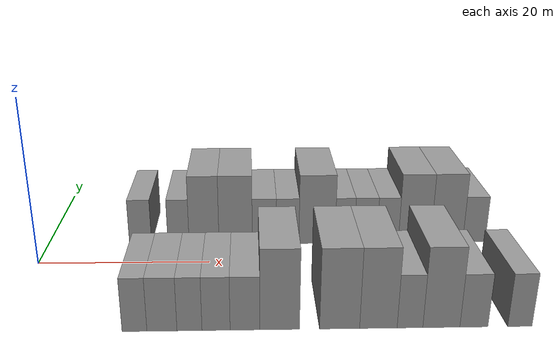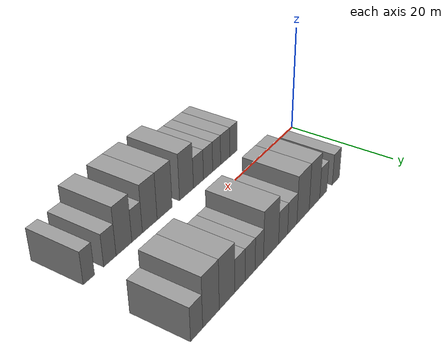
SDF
<sdf version="1.6">
 <world name="default">
  <model name="building_1">
   <static>1</static>
   <pose>11.3476 9.5000 0 0.000000 0.000000 1.570796</pose>
   <link name="link">
    <pose>0 0 3.00 0 0 0</pose>
    <collision name="collision"><geometry><box><size>10.0000 2.6953 6.0000</size></box></geometry></collision>
    <visual name="visual">
     <cast_shadows>0</cast_shadows>
     <geometry><box><size>10.0000 2.6953 6.0000</size></box></geometry>
     <material>
      <script>
       <uri>model://grey_wall/materials/scripts</uri>
       <uri>model://grey_wall/materials/textures</uri>
       <name>vrc/grey_wall</name>
      </script>
     </material>
    </visual>
   </link>
  </model>
  <model name="building_2">
   <static>1</static>
   <pose>15.9924 9.5000 0 0.000000 0.000000 1.570796</pose>
   <link name="link">
    <pose>0 0 3.00 0 0 0</pose>
    <collision name="collision"><geometry><box><size>10.0000 2.5941 6.0000</size></box></geometry></collision>
    <visual name="visual">
     <cast_shadows>0</cast_shadows>
     <geometry><box><size>10.0000 2.5941 6.0000</size></box></geometry>
     <material>
      <script>
       <uri>model://grey_wall/materials/scripts</uri>
       <uri>model://grey_wall/materials/textures</uri>
       <name>vrc/grey_wall</name>
      </script>
     </material>
    </visual>
   </link>
  </model>
  <model name="building_3">
   <static>1</static>
   <pose>19.1227 9.5000 0 0.000000 0.000000 1.570796</pose>
   <link name="link">
    <pose>0 0 4.50 0 0 0</pose>
    <collision name="collision"><geometry><box><size>10.0000 3.6666 9.0000</size></box></geometry></collision>
    <visual name="visual">
     <cast_shadows>0</cast_shadows>
     <geometry><box><size>10.0000 3.6666 9.0000</size></box></geometry>
     <material>
      <script>
       <uri>model://grey_wall/materials/scripts</uri>
       <uri>model://grey_wall/materials/textures</uri>
       <name>vrc/grey_wall</name>
      </script>
     </material>
    </visual>
   </link>
  </model>
  <model name="building_4">
   <static>1</static>
   <pose>23.0033 9.5000 0 0.000000 0.000000 1.570796</pose>
   <link name="link">
    <pose>0 0 4.50 0 0 0</pose>
    <collision name="collision"><geometry><box><size>10.0000 4.0947 9.0000</size></box></geometry></collision>
    <visual name="visual">
     <cast_shadows>0</cast_shadows>
     <geometry><box><size>10.0000 4.0947 9.0000</size></box></geometry>
     <material>
      <script>
       <uri>model://grey_wall/materials/scripts</uri>
       <uri>model://grey_wall/materials/textures</uri>
       <name>vrc/grey_wall</name>
      </script>
     </material>
    </visual>
   </link>
  </model>
  <model name="building_5">
   <static>1</static>
   <pose>26.5268 9.5000 0 0.000000 0.000000 1.570796</pose>
   <link name="link">
    <pose>0 0 3.00 0 0 0</pose>
    <collision name="collision"><geometry><box><size>10.0000 2.9523 6.0000</size></box></geometry></collision>
    <visual name="visual">
     <cast_shadows>0</cast_shadows>
     <geometry><box><size>10.0000 2.9523 6.0000</size></box></geometry>
     <material>
      <script>
       <uri>model://grey_wall/materials/scripts</uri>
       <uri>model://grey_wall/materials/textures</uri>
       <name>vrc/grey_wall</name>
      </script>
     </material>
    </visual>
   </link>
  </model>
  <model name="building_6">
   <static>1</static>
   <pose>29.4002 9.5000 0 0.000000 0.000000 1.570796</pose>
   <link name="link">
    <pose>0 0 3.00 0 0 0</pose>
    <collision name="collision"><geometry><box><size>10.0000 2.7946 6.0000</size></box></geometry></collision>
    <visual name="visual">
     <cast_shadows>0</cast_shadows>
     <geometry><box><size>10.0000 2.7946 6.0000</size></box></geometry>
     <material>
      <script>
       <uri>model://grey_wall/materials/scripts</uri>
       <uri>model://grey_wall/materials/textures</uri>
       <name>vrc/grey_wall</name>
      </script>
     </material>
    </visual>
   </link>
  </model>
  <model name="building_7">
   <static>1</static>
   <pose>33.0232 9.5000 0 0.000000 0.000000 1.570796</pose>
   <link name="link">
    <pose>0 0 4.50 0 0 0</pose>
    <collision name="collision"><geometry><box><size>10.0000 4.4512 9.0000</size></box></geometry></collision>
    <visual name="visual">
     <cast_shadows>0</cast_shadows>
     <geometry><box><size>10.0000 4.4512 9.0000</size></box></geometry>
     <material>
      <script>
       <uri>model://grey_wall/materials/scripts</uri>
       <uri>model://grey_wall/materials/textures</uri>
       <name>vrc/grey_wall</name>
      </script>
     </material>
    </visual>
   </link>
  </model>
  <model name="building_8">
   <static>1</static>
   <pose>36.4513 9.5000 0 0.000000 0.000000 1.570796</pose>
   <link name="link">
    <pose>0 0 3.00 0 0 0</pose>
    <collision name="collision"><geometry><box><size>10.0000 2.4051 6.0000</size></box></geometry></collision>
    <visual name="visual">
     <cast_shadows>0</cast_shadows>
     <geometry><box><size>10.0000 2.4051 6.0000</size></box></geometry>
     <material>
      <script>
       <uri>model://grey_wall/materials/scripts</uri>
       <uri>model://grey_wall/materials/textures</uri>
       <name>vrc/grey_wall</name>
      </script>
     </material>
    </visual>
   </link>
  </model>
  <model name="building_9">
   <static>1</static>
   <pose>39.0521 9.5000 0 0.000000 0.000000 1.570796</pose>
   <link name="link">
    <pose>0 0 3.00 0 0 0</pose>
    <collision name="collision"><geometry><box><size>10.0000 2.7965 6.0000</size></box></geometry></collision>
    <visual name="visual">
     <cast_shadows>0</cast_shadows>
     <geometry><box><size>10.0000 2.7965 6.0000</size></box></geometry>
     <material>
      <script>
       <uri>model://grey_wall/materials/scripts</uri>
       <uri>model://grey_wall/materials/textures</uri>
       <name>vrc/grey_wall</name>
      </script>
     </material>
    </visual>
   </link>
  </model>
  <model name="building_10">
   <static>1</static>
   <pose>41.7821 9.5000 0 0.000000 0.000000 1.570796</pose>
   <link name="link">
    <pose>0 0 3.00 0 0 0</pose>
    <collision name="collision"><geometry><box><size>10.0000 2.6635 6.0000</size></box></geometry></collision>
    <visual name="visual">
     <cast_shadows>0</cast_shadows>
     <geometry><box><size>10.0000 2.6635 6.0000</size></box></geometry>
     <material>
      <script>
       <uri>model://grey_wall/materials/scripts</uri>
       <uri>model://grey_wall/materials/textures</uri>
       <name>vrc/grey_wall</name>
      </script>
     </material>
    </visual>
   </link>
  </model>
  <model name="building_11">
   <static>1</static>
   <pose>45.1213 9.5000 0 0.000000 0.000000 1.570796</pose>
   <link name="link">
    <pose>0 0 4.50 0 0 0</pose>
    <collision name="collision"><geometry><box><size>10.0000 4.0150 9.0000</size></box></geometry></collision>
    <visual name="visual">
     <cast_shadows>0</cast_shadows>
     <geometry><box><size>10.0000 4.0150 9.0000</size></box></geometry>
     <material>
      <script>
       <uri>model://grey_wall/materials/scripts</uri>
       <uri>model://grey_wall/materials/textures</uri>
       <name>vrc/grey_wall</name>
      </script>
     </material>
    </visual>
   </link>
  </model>
  <model name="building_12">
   <static>1</static>
   <pose>49.1280 9.5000 0 0.000000 0.000000 1.570796</pose>
   <link name="link">
    <pose>0 0 4.50 0 0 0</pose>
    <collision name="collision"><geometry><box><size>10.0000 3.9984 9.0000</size></box></geometry></collision>
    <visual name="visual">
     <cast_shadows>0</cast_shadows>
     <geometry><box><size>10.0000 3.9984 9.0000</size></box></geometry>
     <material>
      <script>
       <uri>model://grey_wall/materials/scripts</uri>
       <uri>model://grey_wall/materials/textures</uri>
       <name>vrc/grey_wall</name>
      </script>
     </material>
    </visual>
   </link>
  </model>
  <model name="building_13">
   <static>1</static>
   <pose>52.5361 9.5000 0 0.000000 0.000000 1.570796</pose>
   <link name="link">
    <pose>0 0 3.00 0 0 0</pose>
    <collision name="collision"><geometry><box><size>10.0000 2.8178 6.0000</size></box></geometry></collision>
    <visual name="visual">
     <cast_shadows>0</cast_shadows>
     <geometry><box><size>10.0000 2.8178 6.0000</size></box></geometry>
     <material>
      <script>
       <uri>model://grey_wall/materials/scripts</uri>
       <uri>model://grey_wall/materials/textures</uri>
       <name>vrc/grey_wall</name>
      </script>
     </material>
    </visual>
   </link>
  </model>
  <model name="building_54">
   <static>1</static>
   <pose>13.2302 -9.5000 0 0.000000 0.000000 1.570796</pose>
   <link name="link">
    <pose>0 0 3.00 0 0 0</pose>
    <collision name="collision"><geometry><box><size>10.0000 2.4605 6.0000</size></box></geometry></collision>
    <visual name="visual">
     <cast_shadows>0</cast_shadows>
     <geometry><box><size>10.0000 2.4605 6.0000</size></box></geometry>
     <material>
      <script>
       <uri>model://grey_wall/materials/scripts</uri>
       <uri>model://grey_wall/materials/textures</uri>
       <name>vrc/grey_wall</name>
      </script>
     </material>
    </visual>
   </link>
  </model>
  <model name="building_55">
   <static>1</static>
   <pose>15.9497 -9.5000 0 0.000000 0.000000 1.570796</pose>
   <link name="link">
    <pose>0 0 3.00 0 0 0</pose>
    <collision name="collision"><geometry><box><size>10.0000 2.9785 6.0000</size></box></geometry></collision>
    <visual name="visual">
     <cast_shadows>0</cast_shadows>
     <geometry><box><size>10.0000 2.9785 6.0000</size></box></geometry>
     <material>
      <script>
       <uri>model://grey_wall/materials/scripts</uri>
       <uri>model://grey_wall/materials/textures</uri>
       <name>vrc/grey_wall</name>
      </script>
     </material>
    </visual>
   </link>
  </model>
  <model name="building_56">
   <static>1</static>
   <pose>18.6814 -9.5000 0 0.000000 0.000000 1.570796</pose>
   <link name="link">
    <pose>0 0 3.00 0 0 0</pose>
    <collision name="collision"><geometry><box><size>10.0000 2.4847 6.0000</size></box></geometry></collision>
    <visual name="visual">
     <cast_shadows>0</cast_shadows>
     <geometry><box><size>10.0000 2.4847 6.0000</size></box></geometry>
     <material>
      <script>
       <uri>model://grey_wall/materials/scripts</uri>
       <uri>model://grey_wall/materials/textures</uri>
       <name>vrc/grey_wall</name>
      </script>
     </material>
    </visual>
   </link>
  </model>
  <model name="building_57">
   <static>1</static>
   <pose>21.3229 -9.5000 0 0.000000 0.000000 1.570796</pose>
   <link name="link">
    <pose>0 0 3.00 0 0 0</pose>
    <collision name="collision"><geometry><box><size>10.0000 2.7983 6.0000</size></box></geometry></collision>
    <visual name="visual">
     <cast_shadows>0</cast_shadows>
     <geometry><box><size>10.0000 2.7983 6.0000</size></box></geometry>
     <material>
      <script>
       <uri>model://grey_wall/materials/scripts</uri>
       <uri>model://grey_wall/materials/textures</uri>
       <name>vrc/grey_wall</name>
      </script>
     </material>
    </visual>
   </link>
  </model>
  <model name="building_58">
   <static>1</static>
   <pose>24.2023 -9.5000 0 0.000000 0.000000 1.570796</pose>
   <link name="link">
    <pose>0 0 3.00 0 0 0</pose>
    <collision name="collision"><geometry><box><size>10.0000 2.9605 6.0000</size></box></geometry></collision>
    <visual name="visual">
     <cast_shadows>0</cast_shadows>
     <geometry><box><size>10.0000 2.9605 6.0000</size></box></geometry>
     <material>
      <script>
       <uri>model://grey_wall/materials/scripts</uri>
       <uri>model://grey_wall/materials/textures</uri>
       <name>vrc/grey_wall</name>
      </script>
     </material>
    </visual>
   </link>
  </model>
  <model name="building_59">
   <static>1</static>
   <pose>27.6649 -9.5000 0 0.000000 0.000000 1.570796</pose>
   <link name="link">
    <pose>0 0 4.50 0 0 0</pose>
    <collision name="collision"><geometry><box><size>10.0000 3.9648 9.0000</size></box></geometry></collision>
    <visual name="visual">
     <cast_shadows>0</cast_shadows>
     <geometry><box><size>10.0000 3.9648 9.0000</size></box></geometry>
     <material>
      <script>
       <uri>model://grey_wall/materials/scripts</uri>
       <uri>model://grey_wall/materials/textures</uri>
       <name>vrc/grey_wall</name>
      </script>
     </material>
    </visual>
   </link>
  </model>
  <model name="building_60">
   <static>1</static>
   <pose>33.6532 -9.5000 0 0.000000 0.000000 1.570796</pose>
   <link name="link">
    <pose>0 0 4.50 0 0 0</pose>
    <collision name="collision"><geometry><box><size>10.0000 4.0117 9.0000</size></box></geometry></collision>
    <visual name="visual">
     <cast_shadows>0</cast_shadows>
     <geometry><box><size>10.0000 4.0117 9.0000</size></box></geometry>
     <material>
      <script>
       <uri>model://grey_wall/materials/scripts</uri>
       <uri>model://grey_wall/materials/textures</uri>
       <name>vrc/grey_wall</name>
      </script>
     </material>
    </visual>
   </link>
  </model>
  <model name="building_61">
   <static>1</static>
   <pose>37.5414 -9.5000 0 0.000000 0.000000 1.570796</pose>
   <link name="link">
    <pose>0 0 4.50 0 0 0</pose>
    <collision name="collision"><geometry><box><size>10.0000 3.7647 9.0000</size></box></geometry></collision>
    <visual name="visual">
     <cast_shadows>0</cast_shadows>
     <geometry><box><size>10.0000 3.7647 9.0000</size></box></geometry>
     <material>
      <script>
       <uri>model://grey_wall/materials/scripts</uri>
       <uri>model://grey_wall/materials/textures</uri>
       <name>vrc/grey_wall</name>
      </script>
     </material>
    </visual>
   </link>
  </model>
  <model name="building_62">
   <static>1</static>
   <pose>40.7158 -9.5000 0 0.000000 0.000000 1.570796</pose>
   <link name="link">
    <pose>0 0 3.00 0 0 0</pose>
    <collision name="collision"><geometry><box><size>10.0000 2.5841 6.0000</size></box></geometry></collision>
    <visual name="visual">
     <cast_shadows>0</cast_shadows>
     <geometry><box><size>10.0000 2.5841 6.0000</size></box></geometry>
     <material>
      <script>
       <uri>model://grey_wall/materials/scripts</uri>
       <uri>model://grey_wall/materials/textures</uri>
       <name>vrc/grey_wall</name>
      </script>
     </material>
    </visual>
   </link>
  </model>
  <model name="building_63">
   <static>1</static>
   <pose>43.8744 -9.5000 0 0.000000 0.000000 1.570796</pose>
   <link name="link">
    <pose>0 0 4.50 0 0 0</pose>
    <collision name="collision"><geometry><box><size>10.0000 3.7330 9.0000</size></box></geometry></collision>
    <visual name="visual">
     <cast_shadows>0</cast_shadows>
     <geometry><box><size>10.0000 3.7330 9.0000</size></box></geometry>
     <material>
      <script>
       <uri>model://grey_wall/materials/scripts</uri>
       <uri>model://grey_wall/materials/textures</uri>
       <name>vrc/grey_wall</name>
      </script>
     </material>
    </visual>
   </link>
  </model>
  <model name="building_64">
   <static>1</static>
   <pose>47.1593 -9.5000 0 0.000000 0.000000 1.570796</pose>
   <link name="link">
    <pose>0 0 3.00 0 0 0</pose>
    <collision name="collision"><geometry><box><size>10.0000 2.8369 6.0000</size></box></geometry></collision>
    <visual name="visual">
     <cast_shadows>0</cast_shadows>
     <geometry><box><size>10.0000 2.8369 6.0000</size></box></geometry>
     <material>
      <script>
       <uri>model://grey_wall/materials/scripts</uri>
       <uri>model://grey_wall/materials/textures</uri>
       <name>vrc/grey_wall</name>
      </script>
     </material>
    </visual>
   </link>
  </model>
  <model name="building_65">
   <static>1</static>
   <pose>51.8073 -9.5000 0 0.000000 0.000000 1.570796</pose>
   <link name="link">
    <pose>0 0 3.00 0 0 0</pose>
    <collision name="collision"><geometry><box><size>10.0000 2.4590 6.0000</size></box></geometry></collision>
    <visual name="visual">
     <cast_shadows>0</cast_shadows>
     <geometry><box><size>10.0000 2.4590 6.0000</size></box></geometry>
     <material>
      <script>
       <uri>model://grey_wall/materials/scripts</uri>
       <uri>model://grey_wall/materials/textures</uri>
       <name>vrc/grey_wall</name>
      </script>
     </material>
    </visual>
   </link>
  </model>
 </world>
</sdf>
